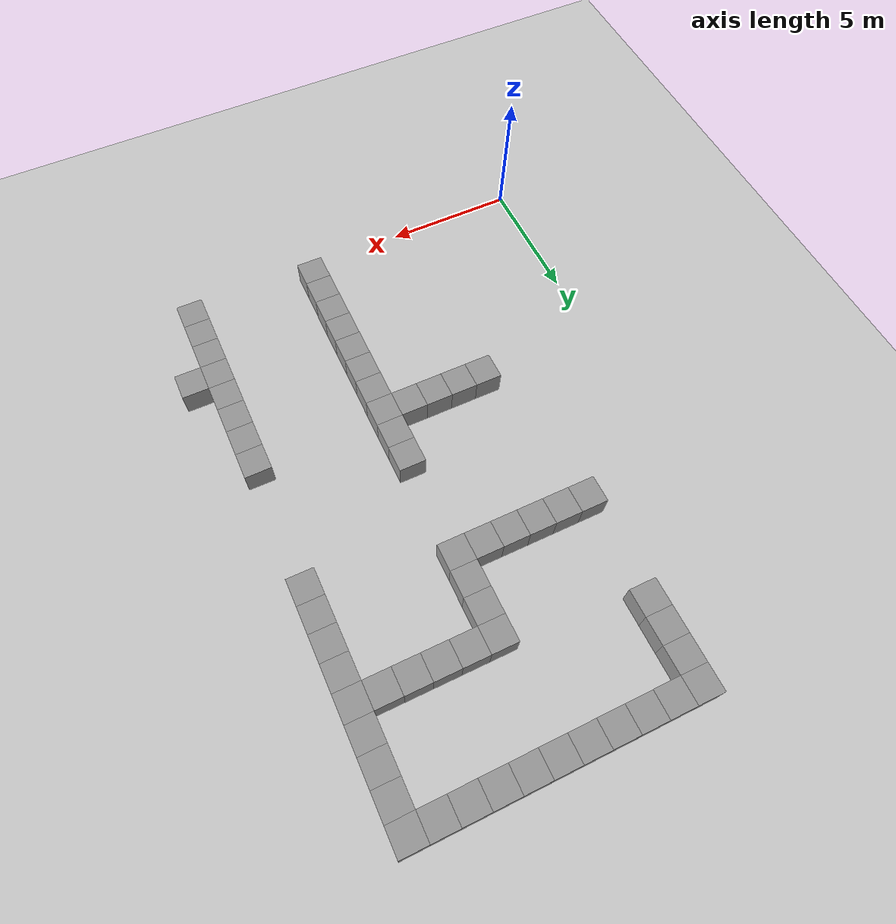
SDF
<sdf version="1.6">
 <world name="default">
  <model name="ground_plane">
   <static>1</static>
   <link name="link">
    <collision name="collision">
     <geometry><plane><normal>0 0 1</normal><size>100 100</size></plane></geometry>
     <surface><friction><ode><mu>100</mu><mu2>50</mu2></ode></friction></surface>
    </collision>
    <visual name="visual">
     <cast_shadows>0</cast_shadows>
     <geometry><plane><normal>0 0 1</normal><size>100 100</size></plane></geometry>
     <material>
      <script><uri>file://media/materials/scripts/gazebo.material</uri><name>Gazebo/Grey</name></script>
     </material>
    </visual>
    <velocity_decay><linear>0</linear><angular>0</angular></velocity_decay>
   </link>
  </model>
  <model name="unit_box_29">
   <pose>9 1 0.5 0 0 0</pose>
   <static>1</static>
   <link name="link">
    <inertial>
     <mass>1</mass>
     <inertia><ixx>1</ixx><ixy>0</ixy><ixz>0</ixz><iyy>1</iyy><iyz>0</iyz><izz>1</izz></inertia>
    </inertial>
    <collision name="collision"><geometry><box><size>1 1 1</size></box></geometry></collision>
    <visual name="visual">
     <geometry><box><size>1 1 1</size></box></geometry>
     <material>
      <script><uri>file://media/materials/scripts/gazebo.material</uri><name>Gazebo/Grey</name></script>
     </material>
    </visual>
    <velocity_decay><linear>0</linear><angular>0</angular></velocity_decay>
   </link>
   <static>0</static>
  </model>
  <model name="unit_box_30">
   <pose>9 2 0.5 0 0 0</pose>
   <static>1</static>
   <link name="link">
    <inertial>
     <mass>1</mass>
     <inertia><ixx>1</ixx><ixy>0</ixy><ixz>0</ixz><iyy>1</iyy><iyz>0</iyz><izz>1</izz></inertia>
    </inertial>
    <collision name="collision"><geometry><box><size>1 1 1</size></box></geometry></collision>
    <visual name="visual">
     <geometry><box><size>1 1 1</size></box></geometry>
     <material>
      <script><uri>file://media/materials/scripts/gazebo.material</uri><name>Gazebo/Grey</name></script>
     </material>
    </visual>
    <velocity_decay><linear>0</linear><angular>0</angular></velocity_decay>
   </link>
   <static>0</static>
  </model>
  <model name="unit_box_31">
   <pose>9 3 0.5 0 0 0</pose>
   <static>1</static>
   <link name="link">
    <inertial>
     <mass>1</mass>
     <inertia><ixx>1</ixx><ixy>0</ixy><ixz>0</ixz><iyy>1</iyy><iyz>0</iyz><izz>1</izz></inertia>
    </inertial>
    <collision name="collision"><geometry><box><size>1 1 1</size></box></geometry></collision>
    <visual name="visual">
     <geometry><box><size>1 1 1</size></box></geometry>
     <material>
      <script><uri>file://media/materials/scripts/gazebo.material</uri><name>Gazebo/Grey</name></script>
     </material>
    </visual>
    <velocity_decay><linear>0</linear><angular>0</angular></velocity_decay>
   </link>
   <static>0</static>
  </model>
  <model name="unit_box_32">
   <pose>9 4 0.5 0 0 0</pose>
   <static>1</static>
   <link name="link">
    <inertial>
     <mass>1</mass>
     <inertia><ixx>1</ixx><ixy>0</ixy><ixz>0</ixz><iyy>1</iyy><iyz>0</iyz><izz>1</izz></inertia>
    </inertial>
    <collision name="collision"><geometry><box><size>1 1 1</size></box></geometry></collision>
    <visual name="visual">
     <geometry><box><size>1 1 1</size></box></geometry>
     <material>
      <script><uri>file://media/materials/scripts/gazebo.material</uri><name>Gazebo/Grey</name></script>
     </material>
    </visual>
    <velocity_decay><linear>0</linear><angular>0</angular></velocity_decay>
   </link>
   <static>0</static>
  </model>
  <model name="unit_box_33">
   <pose>9 5 0.5 0 0 0</pose>
   <static>1</static>
   <link name="link">
    <inertial>
     <mass>1</mass>
     <inertia><ixx>1</ixx><ixy>0</ixy><ixz>0</ixz><iyy>1</iyy><iyz>0</iyz><izz>1</izz></inertia>
    </inertial>
    <collision name="collision"><geometry><box><size>1 1 1</size></box></geometry></collision>
    <visual name="visual">
     <geometry><box><size>1 1 1</size></box></geometry>
     <material>
      <script><uri>file://media/materials/scripts/gazebo.material</uri><name>Gazebo/Grey</name></script>
     </material>
    </visual>
    <velocity_decay><linear>0</linear><angular>0</angular></velocity_decay>
   </link>
   <static>0</static>
  </model>
  <model name="unit_box_34">
   <pose>9 6 0.5 0 0 0</pose>
   <static>1</static>
   <link name="link">
    <inertial>
     <mass>1</mass>
     <inertia><ixx>1</ixx><ixy>0</ixy><ixz>0</ixz><iyy>1</iyy><iyz>0</iyz><izz>1</izz></inertia>
    </inertial>
    <collision name="collision"><geometry><box><size>1 1 1</size></box></geometry></collision>
    <visual name="visual">
     <geometry><box><size>1 1 1</size></box></geometry>
     <material>
      <script><uri>file://media/materials/scripts/gazebo.material</uri><name>Gazebo/Grey</name></script>
     </material>
    </visual>
    <velocity_decay><linear>0</linear><angular>0</angular></velocity_decay>
   </link>
   <static>0</static>
  </model>
  <model name="unit_box_38">
   <pose>9 7 0.5 0 0 0</pose>
   <static>1</static>
   <link name="link">
    <inertial>
     <mass>1</mass>
     <inertia><ixx>1</ixx><ixy>0</ixy><ixz>0</ixz><iyy>1</iyy><iyz>0</iyz><izz>1</izz></inertia>
    </inertial>
    <collision name="collision"><geometry><box><size>1 1 1</size></box></geometry></collision>
    <visual name="visual">
     <geometry><box><size>1 1 1</size></box></geometry>
     <material>
      <script><uri>file://media/materials/scripts/gazebo.material</uri><name>Gazebo/Grey</name></script>
     </material>
    </visual>
    <velocity_decay><linear>0</linear><angular>0</angular></velocity_decay>
   </link>
   <static>0</static>
  </model>
  <model name="unit_box_39">
   <pose>9 8 0.5 0 0 0</pose>
   <static>1</static>
   <link name="link">
    <inertial>
     <mass>1</mass>
     <inertia><ixx>1</ixx><ixy>0</ixy><ixz>0</ixz><iyy>1</iyy><iyz>0</iyz><izz>1</izz></inertia>
    </inertial>
    <collision name="collision"><geometry><box><size>1 1 1</size></box></geometry></collision>
    <visual name="visual">
     <geometry><box><size>1 1 1</size></box></geometry>
     <material>
      <script><uri>file://media/materials/scripts/gazebo.material</uri><name>Gazebo/Grey</name></script>
     </material>
    </visual>
    <velocity_decay><linear>0</linear><angular>0</angular></velocity_decay>
   </link>
   <static>0</static>
  </model>
  <model name="unit_box_51">
   <pose>8 8 0.5 0 0 0</pose>
   <static>1</static>
   <link name="link">
    <inertial>
     <mass>1</mass>
     <inertia><ixx>1</ixx><ixy>0</ixy><ixz>0</ixz><iyy>1</iyy><iyz>0</iyz><izz>1</izz></inertia>
    </inertial>
    <collision name="collision"><geometry><box><size>1 1 1</size></box></geometry></collision>
    <visual name="visual">
     <geometry><box><size>1 1 1</size></box></geometry>
     <material>
      <script><uri>file://media/materials/scripts/gazebo.material</uri><name>Gazebo/Grey</name></script>
     </material>
    </visual>
    <velocity_decay><linear>0</linear><angular>0</angular></velocity_decay>
   </link>
   <static>0</static>
  </model>
  <model name="unit_box_52">
   <pose>7 8 0.5 0 0 0</pose>
   <static>1</static>
   <link name="link">
    <inertial>
     <mass>1</mass>
     <inertia><ixx>1</ixx><ixy>0</ixy><ixz>0</ixz><iyy>1</iyy><iyz>0</iyz><izz>1</izz></inertia>
    </inertial>
    <collision name="collision"><geometry><box><size>1 1 1</size></box></geometry></collision>
    <visual name="visual">
     <geometry><box><size>1 1 1</size></box></geometry>
     <material>
      <script><uri>file://media/materials/scripts/gazebo.material</uri><name>Gazebo/Grey</name></script>
     </material>
    </visual>
    <velocity_decay><linear>0</linear><angular>0</angular></velocity_decay>
   </link>
   <static>0</static>
  </model>
  <model name="unit_box_53">
   <pose>6 8 0.5 0 0 0</pose>
   <static>1</static>
   <link name="link">
    <inertial>
     <mass>1</mass>
     <inertia><ixx>1</ixx><ixy>0</ixy><ixz>0</ixz><iyy>1</iyy><iyz>0</iyz><izz>1</izz></inertia>
    </inertial>
    <collision name="collision"><geometry><box><size>1 1 1</size></box></geometry></collision>
    <visual name="visual">
     <geometry><box><size>1 1 1</size></box></geometry>
     <material>
      <script><uri>file://media/materials/scripts/gazebo.material</uri><name>Gazebo/Grey</name></script>
     </material>
    </visual>
    <velocity_decay><linear>0</linear><angular>0</angular></velocity_decay>
   </link>
   <static>0</static>
  </model>
  <model name="unit_box_54">
   <pose>5 8 0.5 0 0 0</pose>
   <static>1</static>
   <link name="link">
    <inertial>
     <mass>1</mass>
     <inertia><ixx>1</ixx><ixy>0</ixy><ixz>0</ixz><iyy>1</iyy><iyz>0</iyz><izz>1</izz></inertia>
    </inertial>
    <collision name="collision"><geometry><box><size>1 1 1</size></box></geometry></collision>
    <visual name="visual">
     <geometry><box><size>1 1 1</size></box></geometry>
     <material>
      <script><uri>file://media/materials/scripts/gazebo.material</uri><name>Gazebo/Grey</name></script>
     </material>
    </visual>
    <velocity_decay><linear>0</linear><angular>0</angular></velocity_decay>
   </link>
   <static>0</static>
  </model>
  <model name="unit_box_55">
   <pose>9 9 0.5 0 0 0</pose>
   <static>1</static>
   <link name="link">
    <inertial>
     <mass>1</mass>
     <inertia><ixx>1</ixx><ixy>0</ixy><ixz>0</ixz><iyy>1</iyy><iyz>0</iyz><izz>1</izz></inertia>
    </inertial>
    <collision name="collision"><geometry><box><size>1 1 1</size></box></geometry></collision>
    <visual name="visual">
     <geometry><box><size>1 1 1</size></box></geometry>
     <material>
      <script><uri>file://media/materials/scripts/gazebo.material</uri><name>Gazebo/Grey</name></script>
     </material>
    </visual>
    <velocity_decay><linear>0</linear><angular>0</angular></velocity_decay>
   </link>
   <static>0</static>
  </model>
  <model name="unit_box_56">
   <pose>9 10 0.5 0 0 0</pose>
   <static>1</static>
   <link name="link">
    <inertial>
     <mass>1</mass>
     <inertia><ixx>1</ixx><ixy>0</ixy><ixz>0</ixz><iyy>1</iyy><iyz>0</iyz><izz>1</izz></inertia>
    </inertial>
    <collision name="collision"><geometry><box><size>1 1 1</size></box></geometry></collision>
    <visual name="visual">
     <geometry><box><size>1 1 1</size></box></geometry>
     <material>
      <script><uri>file://media/materials/scripts/gazebo.material</uri><name>Gazebo/Grey</name></script>
     </material>
    </visual>
    <velocity_decay><linear>0</linear><angular>0</angular></velocity_decay>
   </link>
   <static>0</static>
  </model>
  <model name="unit_box_65">
   <pose>4 14 0.5 0 0 0</pose>
   <static>1</static>
   <link name="link">
    <inertial>
     <mass>1</mass>
     <inertia><ixx>1</ixx><ixy>0</ixy><ixz>0</ixz><iyy>1</iyy><iyz>0</iyz><izz>1</izz></inertia>
    </inertial>
    <collision name="collision"><geometry><box><size>1 1 1</size></box></geometry></collision>
    <visual name="visual">
     <geometry><box><size>1 1 1</size></box></geometry>
     <material>
      <script><uri>file://media/materials/scripts/gazebo.material</uri><name>Gazebo/Grey</name></script>
     </material>
    </visual>
    <velocity_decay><linear>0</linear><angular>0</angular></velocity_decay>
   </link>
   <static>0</static>
  </model>
  <model name="unit_box_66">
   <pose>5 14 0.5 0 0 0</pose>
   <static>1</static>
   <link name="link">
    <inertial>
     <mass>1</mass>
     <inertia><ixx>1</ixx><ixy>0</ixy><ixz>0</ixz><iyy>1</iyy><iyz>0</iyz><izz>1</izz></inertia>
    </inertial>
    <collision name="collision"><geometry><box><size>1 1 1</size></box></geometry></collision>
    <visual name="visual">
     <geometry><box><size>1 1 1</size></box></geometry>
     <material>
      <script><uri>file://media/materials/scripts/gazebo.material</uri><name>Gazebo/Grey</name></script>
     </material>
    </visual>
    <velocity_decay><linear>0</linear><angular>0</angular></velocity_decay>
   </link>
   <static>0</static>
  </model>
  <model name="unit_box_86">
   <pose>6 14 0.5 0 0 0</pose>
   <static>1</static>
   <link name="link">
    <inertial>
     <mass>1</mass>
     <inertia><ixx>1</ixx><ixy>0</ixy><ixz>0</ixz><iyy>1</iyy><iyz>0</iyz><izz>1</izz></inertia>
    </inertial>
    <collision name="collision"><geometry><box><size>1 1 1</size></box></geometry></collision>
    <visual name="visual">
     <geometry><box><size>1 1 1</size></box></geometry>
     <material>
      <script><uri>file://media/materials/scripts/gazebo.material</uri><name>Gazebo/Grey</name></script>
     </material>
    </visual>
    <velocity_decay><linear>0</linear><angular>0</angular></velocity_decay>
   </link>
   <static>0</static>
  </model>
  <model name="unit_box_87">
   <pose>7 14 0.5 0 0 0</pose>
   <static>1</static>
   <link name="link">
    <inertial>
     <mass>1</mass>
     <inertia><ixx>1</ixx><ixy>0</ixy><ixz>0</ixz><iyy>1</iyy><iyz>0</iyz><izz>1</izz></inertia>
    </inertial>
    <collision name="collision"><geometry><box><size>1 1 1</size></box></geometry></collision>
    <visual name="visual">
     <geometry><box><size>1 1 1</size></box></geometry>
     <material>
      <script><uri>file://media/materials/scripts/gazebo.material</uri><name>Gazebo/Grey</name></script>
     </material>
    </visual>
    <velocity_decay><linear>0</linear><angular>0</angular></velocity_decay>
   </link>
   <static>0</static>
  </model>
  <model name="unit_box_88">
   <pose>8 14 0.5 0 0 0</pose>
   <static>1</static>
   <link name="link">
    <inertial>
     <mass>1</mass>
     <inertia><ixx>1</ixx><ixy>0</ixy><ixz>0</ixz><iyy>1</iyy><iyz>0</iyz><izz>1</izz></inertia>
    </inertial>
    <collision name="collision"><geometry><box><size>1 1 1</size></box></geometry></collision>
    <visual name="visual">
     <geometry><box><size>1 1 1</size></box></geometry>
     <material>
      <script><uri>file://media/materials/scripts/gazebo.material</uri><name>Gazebo/Grey</name></script>
     </material>
    </visual>
    <velocity_decay><linear>0</linear><angular>0</angular></velocity_decay>
   </link>
   <static>0</static>
  </model>
  <model name="unit_box_89">
   <pose>9 14 0.5 0 0 0</pose>
   <static>1</static>
   <link name="link">
    <inertial>
     <mass>1</mass>
     <inertia><ixx>1</ixx><ixy>0</ixy><ixz>0</ixz><iyy>1</iyy><iyz>0</iyz><izz>1</izz></inertia>
    </inertial>
    <collision name="collision"><geometry><box><size>1 1 1</size></box></geometry></collision>
    <visual name="visual">
     <geometry><box><size>1 1 1</size></box></geometry>
     <material>
      <script><uri>file://media/materials/scripts/gazebo.material</uri><name>Gazebo/Grey</name></script>
     </material>
    </visual>
    <velocity_decay><linear>0</linear><angular>0</angular></velocity_decay>
   </link>
   <static>0</static>
  </model>
  <model name="unit_box_93">
   <pose>9 15 0.5 0 0 0</pose>
   <static>1</static>
   <link name="link">
    <inertial>
     <mass>1</mass>
     <inertia><ixx>1</ixx><ixy>0</ixy><ixz>0</ixz><iyy>1</iyy><iyz>0</iyz><izz>1</izz></inertia>
    </inertial>
    <collision name="collision"><geometry><box><size>1 1 1</size></box></geometry></collision>
    <visual name="visual">
     <geometry><box><size>1 1 1</size></box></geometry>
     <material>
      <script><uri>file://media/materials/scripts/gazebo.material</uri><name>Gazebo/Grey</name></script>
     </material>
    </visual>
    <velocity_decay><linear>0</linear><angular>0</angular></velocity_decay>
   </link>
   <static>0</static>
  </model>
  <model name="unit_box_94">
   <pose>9 16 0.5 0 0 0</pose>
   <static>1</static>
   <link name="link">
    <inertial>
     <mass>1</mass>
     <inertia><ixx>1</ixx><ixy>0</ixy><ixz>0</ixz><iyy>1</iyy><iyz>0</iyz><izz>1</izz></inertia>
    </inertial>
    <collision name="collision"><geometry><box><size>1 1 1</size></box></geometry></collision>
    <visual name="visual">
     <geometry><box><size>1 1 1</size></box></geometry>
     <material>
      <script><uri>file://media/materials/scripts/gazebo.material</uri><name>Gazebo/Grey</name></script>
     </material>
    </visual>
    <velocity_decay><linear>0</linear><angular>0</angular></velocity_decay>
   </link>
   <static>0</static>
  </model>
  <model name="unit_box_95">
   <pose>9 17 0.5 0 0 0</pose>
   <static>1</static>
   <link name="link">
    <inertial>
     <mass>1</mass>
     <inertia><ixx>1</ixx><ixy>0</ixy><ixz>0</ixz><iyy>1</iyy><iyz>0</iyz><izz>1</izz></inertia>
    </inertial>
    <collision name="collision"><geometry><box><size>1 1 1</size></box></geometry></collision>
    <visual name="visual">
     <geometry><box><size>1 1 1</size></box></geometry>
     <material>
      <script><uri>file://media/materials/scripts/gazebo.material</uri><name>Gazebo/Grey</name></script>
     </material>
    </visual>
    <velocity_decay><linear>0</linear><angular>0</angular></velocity_decay>
   </link>
   <static>0</static>
  </model>
  <model name="unit_box_107">
   <pose>4 21 0.5 0 0 0</pose>
   <static>1</static>
   <link name="link">
    <inertial>
     <mass>1</mass>
     <inertia><ixx>1</ixx><ixy>0</ixy><ixz>0</ixz><iyy>1</iyy><iyz>0</iyz><izz>1</izz></inertia>
    </inertial>
    <collision name="collision"><geometry><box><size>1 1 1</size></box></geometry></collision>
    <visual name="visual">
     <geometry><box><size>1 1 1</size></box></geometry>
     <material>
      <script><uri>file://media/materials/scripts/gazebo.material</uri><name>Gazebo/Grey</name></script>
     </material>
    </visual>
    <velocity_decay><linear>0</linear><angular>0</angular></velocity_decay>
   </link>
   <static>0</static>
  </model>
  <model name="unit_box_108">
   <pose>5 21 0.5 0 0 0</pose>
   <static>1</static>
   <link name="link">
    <inertial>
     <mass>1</mass>
     <inertia><ixx>1</ixx><ixy>0</ixy><ixz>0</ixz><iyy>1</iyy><iyz>0</iyz><izz>1</izz></inertia>
    </inertial>
    <collision name="collision"><geometry><box><size>1 1 1</size></box></geometry></collision>
    <visual name="visual">
     <geometry><box><size>1 1 1</size></box></geometry>
     <material>
      <script><uri>file://media/materials/scripts/gazebo.material</uri><name>Gazebo/Grey</name></script>
     </material>
    </visual>
    <velocity_decay><linear>0</linear><angular>0</angular></velocity_decay>
   </link>
   <static>0</static>
  </model>
  <model name="unit_box_109">
   <pose>6 21 0.5 0 0 0</pose>
   <static>1</static>
   <link name="link">
    <inertial>
     <mass>1</mass>
     <inertia><ixx>1</ixx><ixy>0</ixy><ixz>0</ixz><iyy>1</iyy><iyz>0</iyz><izz>1</izz></inertia>
    </inertial>
    <collision name="collision"><geometry><box><size>1 1 1</size></box></geometry></collision>
    <visual name="visual">
     <geometry><box><size>1 1 1</size></box></geometry>
     <material>
      <script><uri>file://media/materials/scripts/gazebo.material</uri><name>Gazebo/Grey</name></script>
     </material>
    </visual>
    <velocity_decay><linear>0</linear><angular>0</angular></velocity_decay>
   </link>
   <static>0</static>
  </model>
  <model name="unit_box_110">
   <pose>7 21 0.5 0 0 0</pose>
   <static>1</static>
   <link name="link">
    <inertial>
     <mass>1</mass>
     <inertia><ixx>1</ixx><ixy>0</ixy><ixz>0</ixz><iyy>1</iyy><iyz>0</iyz><izz>1</izz></inertia>
    </inertial>
    <collision name="collision"><geometry><box><size>1 1 1</size></box></geometry></collision>
    <visual name="visual">
     <geometry><box><size>1 1 1</size></box></geometry>
     <material>
      <script><uri>file://media/materials/scripts/gazebo.material</uri><name>Gazebo/Grey</name></script>
     </material>
    </visual>
    <velocity_decay><linear>0</linear><angular>0</angular></velocity_decay>
   </link>
   <static>0</static>
  </model>
  <model name="unit_box_111">
   <pose>8 21 0.5 0 0 0</pose>
   <static>1</static>
   <link name="link">
    <inertial>
     <mass>1</mass>
     <inertia><ixx>1</ixx><ixy>0</ixy><ixz>0</ixz><iyy>1</iyy><iyz>0</iyz><izz>1</izz></inertia>
    </inertial>
    <collision name="collision"><geometry><box><size>1 1 1</size></box></geometry></collision>
    <visual name="visual">
     <geometry><box><size>1 1 1</size></box></geometry>
     <material>
      <script><uri>file://media/materials/scripts/gazebo.material</uri><name>Gazebo/Grey</name></script>
     </material>
    </visual>
    <velocity_decay><linear>0</linear><angular>0</angular></velocity_decay>
   </link>
   <static>0</static>
  </model>
  <model name="unit_box_112">
   <pose>9 21 0.5 0 0 0</pose>
   <static>1</static>
   <link name="link">
    <inertial>
     <mass>1</mass>
     <inertia><ixx>1</ixx><ixy>0</ixy><ixz>0</ixz><iyy>1</iyy><iyz>0</iyz><izz>1</izz></inertia>
    </inertial>
    <collision name="collision"><geometry><box><size>1 1 1</size></box></geometry></collision>
    <visual name="visual">
     <geometry><box><size>1 1 1</size></box></geometry>
     <material>
      <script><uri>file://media/materials/scripts/gazebo.material</uri><name>Gazebo/Grey</name></script>
     </material>
    </visual>
    <velocity_decay><linear>0</linear><angular>0</angular></velocity_decay>
   </link>
   <static>0</static>
  </model>
  <model name="unit_box_113">
   <pose>10 21 0.5 0 0 0</pose>
   <static>1</static>
   <link name="link">
    <inertial>
     <mass>1</mass>
     <inertia><ixx>1</ixx><ixy>0</ixy><ixz>0</ixz><iyy>1</iyy><iyz>0</iyz><izz>1</izz></inertia>
    </inertial>
    <collision name="collision"><geometry><box><size>1 1 1</size></box></geometry></collision>
    <visual name="visual">
     <geometry><box><size>1 1 1</size></box></geometry>
     <material>
      <script><uri>file://media/materials/scripts/gazebo.material</uri><name>Gazebo/Grey</name></script>
     </material>
    </visual>
    <velocity_decay><linear>0</linear><angular>0</angular></velocity_decay>
   </link>
   <static>0</static>
  </model>
  <model name="unit_box_114">
   <pose>11 21 0.5 0 0 0</pose>
   <static>1</static>
   <link name="link">
    <inertial>
     <mass>1</mass>
     <inertia><ixx>1</ixx><ixy>0</ixy><ixz>0</ixz><iyy>1</iyy><iyz>0</iyz><izz>1</izz></inertia>
    </inertial>
    <collision name="collision"><geometry><box><size>1 1 1</size></box></geometry></collision>
    <visual name="visual">
     <geometry><box><size>1 1 1</size></box></geometry>
     <material>
      <script><uri>file://media/materials/scripts/gazebo.material</uri><name>Gazebo/Grey</name></script>
     </material>
    </visual>
    <velocity_decay><linear>0</linear><angular>0</angular></velocity_decay>
   </link>
   <static>0</static>
  </model>
  <model name="unit_box_115">
   <pose>12 21 0.5 0 0 0</pose>
   <static>1</static>
   <link name="link">
    <inertial>
     <mass>1</mass>
     <inertia><ixx>1</ixx><ixy>0</ixy><ixz>0</ixz><iyy>1</iyy><iyz>0</iyz><izz>1</izz></inertia>
    </inertial>
    <collision name="collision"><geometry><box><size>1 1 1</size></box></geometry></collision>
    <visual name="visual">
     <geometry><box><size>1 1 1</size></box></geometry>
     <material>
      <script><uri>file://media/materials/scripts/gazebo.material</uri><name>Gazebo/Grey</name></script>
     </material>
    </visual>
    <velocity_decay><linear>0</linear><angular>0</angular></velocity_decay>
   </link>
   <static>0</static>
  </model>
  <model name="unit_box_116">
   <pose>13 21 0.5 0 0 0</pose>
   <static>1</static>
   <link name="link">
    <inertial>
     <mass>1</mass>
     <inertia><ixx>1</ixx><ixy>0</ixy><ixz>0</ixz><iyy>1</iyy><iyz>0</iyz><izz>1</izz></inertia>
    </inertial>
    <collision name="collision"><geometry><box><size>1 1 1</size></box></geometry></collision>
    <visual name="visual">
     <geometry><box><size>1 1 1</size></box></geometry>
     <material>
      <script><uri>file://media/materials/scripts/gazebo.material</uri><name>Gazebo/Grey</name></script>
     </material>
    </visual>
    <velocity_decay><linear>0</linear><angular>0</angular></velocity_decay>
   </link>
   <static>0</static>
  </model>
  <model name="unit_box_117">
   <pose>10 17 0.5 0 0 0</pose>
   <static>1</static>
   <link name="link">
    <inertial>
     <mass>1</mass>
     <inertia><ixx>1</ixx><ixy>0</ixy><ixz>0</ixz><iyy>1</iyy><iyz>0</iyz><izz>1</izz></inertia>
    </inertial>
    <collision name="collision"><geometry><box><size>1 1 1</size></box></geometry></collision>
    <visual name="visual">
     <geometry><box><size>1 1 1</size></box></geometry>
     <material>
      <script><uri>file://media/materials/scripts/gazebo.material</uri><name>Gazebo/Grey</name></script>
     </material>
    </visual>
    <velocity_decay><linear>0</linear><angular>0</angular></velocity_decay>
   </link>
   <static>0</static>
  </model>
  <model name="unit_box_118">
   <pose>11 17 0.5 0 0 0</pose>
   <static>1</static>
   <link name="link">
    <inertial>
     <mass>1</mass>
     <inertia><ixx>1</ixx><ixy>0</ixy><ixz>0</ixz><iyy>1</iyy><iyz>0</iyz><izz>1</izz></inertia>
    </inertial>
    <collision name="collision"><geometry><box><size>1 1 1</size></box></geometry></collision>
    <visual name="visual">
     <geometry><box><size>1 1 1</size></box></geometry>
     <material>
      <script><uri>file://media/materials/scripts/gazebo.material</uri><name>Gazebo/Grey</name></script>
     </material>
    </visual>
    <velocity_decay><linear>0</linear><angular>0</angular></velocity_decay>
   </link>
   <static>0</static>
  </model>
  <model name="unit_box_119">
   <pose>12 17 0.5 0 0 0</pose>
   <static>1</static>
   <link name="link">
    <inertial>
     <mass>1</mass>
     <inertia><ixx>1</ixx><ixy>0</ixy><ixz>0</ixz><iyy>1</iyy><iyz>0</iyz><izz>1</izz></inertia>
    </inertial>
    <collision name="collision"><geometry><box><size>1 1 1</size></box></geometry></collision>
    <visual name="visual">
     <geometry><box><size>1 1 1</size></box></geometry>
     <material>
      <script><uri>file://media/materials/scripts/gazebo.material</uri><name>Gazebo/Grey</name></script>
     </material>
    </visual>
    <velocity_decay><linear>0</linear><angular>0</angular></velocity_decay>
   </link>
   <static>0</static>
  </model>
  <model name="unit_box_120">
   <pose>13 17 0.5 0 0 0</pose>
   <static>1</static>
   <link name="link">
    <inertial>
     <mass>1</mass>
     <inertia><ixx>1</ixx><ixy>0</ixy><ixz>0</ixz><iyy>1</iyy><iyz>0</iyz><izz>1</izz></inertia>
    </inertial>
    <collision name="collision"><geometry><box><size>1 1 1</size></box></geometry></collision>
    <visual name="visual">
     <geometry><box><size>1 1 1</size></box></geometry>
     <material>
      <script><uri>file://media/materials/scripts/gazebo.material</uri><name>Gazebo/Grey</name></script>
     </material>
    </visual>
    <velocity_decay><linear>0</linear><angular>0</angular></velocity_decay>
   </link>
   <static>0</static>
  </model>
  <model name="unit_box_121">
   <pose>14 21 0.5 0 0 0</pose>
   <static>1</static>
   <link name="link">
    <inertial>
     <mass>1</mass>
     <inertia><ixx>1</ixx><ixy>0</ixy><ixz>0</ixz><iyy>1</iyy><iyz>0</iyz><izz>1</izz></inertia>
    </inertial>
    <collision name="collision"><geometry><box><size>1 1 1</size></box></geometry></collision>
    <visual name="visual">
     <geometry><box><size>1 1 1</size></box></geometry>
     <material>
      <script><uri>file://media/materials/scripts/gazebo.material</uri><name>Gazebo/Grey</name></script>
     </material>
    </visual>
    <velocity_decay><linear>0</linear><angular>0</angular></velocity_decay>
   </link>
   <static>0</static>
  </model>
  <model name="unit_box_122">
   <pose>14 20 0.5 0 0 0</pose>
   <static>1</static>
   <link name="link">
    <inertial>
     <mass>1</mass>
     <inertia><ixx>1</ixx><ixy>0</ixy><ixz>0</ixz><iyy>1</iyy><iyz>0</iyz><izz>1</izz></inertia>
    </inertial>
    <collision name="collision"><geometry><box><size>1 1 1</size></box></geometry></collision>
    <visual name="visual">
     <geometry><box><size>1 1 1</size></box></geometry>
     <material>
      <script><uri>file://media/materials/scripts/gazebo.material</uri><name>Gazebo/Grey</name></script>
     </material>
    </visual>
    <velocity_decay><linear>0</linear><angular>0</angular></velocity_decay>
   </link>
   <static>0</static>
  </model>
  <model name="unit_box_123">
   <pose>14 19 0.5 0 0 0</pose>
   <static>1</static>
   <link name="link">
    <inertial>
     <mass>1</mass>
     <inertia><ixx>1</ixx><ixy>0</ixy><ixz>0</ixz><iyy>1</iyy><iyz>0</iyz><izz>1</izz></inertia>
    </inertial>
    <collision name="collision"><geometry><box><size>1 1 1</size></box></geometry></collision>
    <visual name="visual">
     <geometry><box><size>1 1 1</size></box></geometry>
     <material>
      <script><uri>file://media/materials/scripts/gazebo.material</uri><name>Gazebo/Grey</name></script>
     </material>
    </visual>
    <velocity_decay><linear>0</linear><angular>0</angular></velocity_decay>
   </link>
   <static>0</static>
  </model>
  <model name="unit_box_124">
   <pose>14 18 0.5 0 0 0</pose>
   <static>1</static>
   <link name="link">
    <inertial>
     <mass>1</mass>
     <inertia><ixx>1</ixx><ixy>0</ixy><ixz>0</ixz><iyy>1</iyy><iyz>0</iyz><izz>1</izz></inertia>
    </inertial>
    <collision name="collision"><geometry><box><size>1 1 1</size></box></geometry></collision>
    <visual name="visual">
     <geometry><box><size>1 1 1</size></box></geometry>
     <material>
      <script><uri>file://media/materials/scripts/gazebo.material</uri><name>Gazebo/Grey</name></script>
     </material>
    </visual>
    <velocity_decay><linear>0</linear><angular>0</angular></velocity_decay>
   </link>
   <static>0</static>
  </model>
  <model name="unit_box_125">
   <pose>14 17 0.5 0 0 0</pose>
   <static>1</static>
   <link name="link">
    <inertial>
     <mass>1</mass>
     <inertia><ixx>1</ixx><ixy>0</ixy><ixz>0</ixz><iyy>1</iyy><iyz>0</iyz><izz>1</izz></inertia>
    </inertial>
    <collision name="collision"><geometry><box><size>1 1 1</size></box></geometry></collision>
    <visual name="visual">
     <geometry><box><size>1 1 1</size></box></geometry>
     <material>
      <script><uri>file://media/materials/scripts/gazebo.material</uri><name>Gazebo/Grey</name></script>
     </material>
    </visual>
    <velocity_decay><linear>0</linear><angular>0</angular></velocity_decay>
   </link>
   <static>0</static>
  </model>
  <model name="unit_box_126">
   <pose>4 20 0.5 0 0 0</pose>
   <static>1</static>
   <link name="link">
    <inertial>
     <mass>1</mass>
     <inertia><ixx>1</ixx><ixy>0</ixy><ixz>0</ixz><iyy>1</iyy><iyz>0</iyz><izz>1</izz></inertia>
    </inertial>
    <collision name="collision"><geometry><box><size>1 1 1</size></box></geometry></collision>
    <visual name="visual">
     <geometry><box><size>1 1 1</size></box></geometry>
     <material>
      <script><uri>file://media/materials/scripts/gazebo.material</uri><name>Gazebo/Grey</name></script>
     </material>
    </visual>
    <velocity_decay><linear>0</linear><angular>0</angular></velocity_decay>
   </link>
   <static>0</static>
  </model>
  <model name="unit_box_127">
   <pose>4 19 0.5 0 0 0</pose>
   <static>1</static>
   <link name="link">
    <inertial>
     <mass>1</mass>
     <inertia><ixx>1</ixx><ixy>0</ixy><ixz>0</ixz><iyy>1</iyy><iyz>0</iyz><izz>1</izz></inertia>
    </inertial>
    <collision name="collision"><geometry><box><size>1 1 1</size></box></geometry></collision>
    <visual name="visual">
     <geometry><box><size>1 1 1</size></box></geometry>
     <material>
      <script><uri>file://media/materials/scripts/gazebo.material</uri><name>Gazebo/Grey</name></script>
     </material>
    </visual>
    <velocity_decay><linear>0</linear><angular>0</angular></velocity_decay>
   </link>
   <static>0</static>
  </model>
  <model name="unit_box_128">
   <pose>4 18 0.5 0 0 0</pose>
   <static>1</static>
   <link name="link">
    <inertial>
     <mass>1</mass>
     <inertia><ixx>1</ixx><ixy>0</ixy><ixz>0</ixz><iyy>1</iyy><iyz>0</iyz><izz>1</izz></inertia>
    </inertial>
    <collision name="collision"><geometry><box><size>1 1 1</size></box></geometry></collision>
    <visual name="visual">
     <geometry><box><size>1 1 1</size></box></geometry>
     <material>
      <script><uri>file://media/materials/scripts/gazebo.material</uri><name>Gazebo/Grey</name></script>
     </material>
    </visual>
    <velocity_decay><linear>0</linear><angular>0</angular></velocity_decay>
   </link>
   <static>0</static>
  </model>
  <model name="unit_box_130">
   <pose>14 16 0.5 0 0 0</pose>
   <static>1</static>
   <link name="link">
    <inertial>
     <mass>1</mass>
     <inertia><ixx>1</ixx><ixy>0</ixy><ixz>0</ixz><iyy>1</iyy><iyz>0</iyz><izz>1</izz></inertia>
    </inertial>
    <collision name="collision"><geometry><box><size>1 1 1</size></box></geometry></collision>
    <visual name="visual">
     <geometry><box><size>1 1 1</size></box></geometry>
     <material>
      <script><uri>file://media/materials/scripts/gazebo.material</uri><name>Gazebo/Grey</name></script>
     </material>
    </visual>
    <velocity_decay><linear>0</linear><angular>0</angular></velocity_decay>
   </link>
   <static>0</static>
  </model>
  <model name="unit_box_131">
   <pose>14 15 0.5 0 0 0</pose>
   <static>1</static>
   <link name="link">
    <inertial>
     <mass>1</mass>
     <inertia><ixx>1</ixx><ixy>0</ixy><ixz>0</ixz><iyy>1</iyy><iyz>0</iyz><izz>1</izz></inertia>
    </inertial>
    <collision name="collision"><geometry><box><size>1 1 1</size></box></geometry></collision>
    <visual name="visual">
     <geometry><box><size>1 1 1</size></box></geometry>
     <material>
      <script><uri>file://media/materials/scripts/gazebo.material</uri><name>Gazebo/Grey</name></script>
     </material>
    </visual>
    <velocity_decay><linear>0</linear><angular>0</angular></velocity_decay>
   </link>
   <static>0</static>
  </model>
  <model name="unit_box_132">
   <pose>14 14 0.5 0 0 0</pose>
   <static>1</static>
   <link name="link">
    <inertial>
     <mass>1</mass>
     <inertia><ixx>1</ixx><ixy>0</ixy><ixz>0</ixz><iyy>1</iyy><iyz>0</iyz><izz>1</izz></inertia>
    </inertial>
    <collision name="collision"><geometry><box><size>1 1 1</size></box></geometry></collision>
    <visual name="visual">
     <geometry><box><size>1 1 1</size></box></geometry>
     <material>
      <script><uri>file://media/materials/scripts/gazebo.material</uri><name>Gazebo/Grey</name></script>
     </material>
    </visual>
    <velocity_decay><linear>0</linear><angular>0</angular></velocity_decay>
   </link>
   <static>0</static>
  </model>
  <model name="unit_box_133">
   <pose>14 13 0.5 0 0 0</pose>
   <static>1</static>
   <link name="link">
    <inertial>
     <mass>1</mass>
     <inertia><ixx>1</ixx><ixy>0</ixy><ixz>0</ixz><iyy>1</iyy><iyz>0</iyz><izz>1</izz></inertia>
    </inertial>
    <collision name="collision"><geometry><box><size>1 1 1</size></box></geometry></collision>
    <visual name="visual">
     <geometry><box><size>1 1 1</size></box></geometry>
     <material>
      <script><uri>file://media/materials/scripts/gazebo.material</uri><name>Gazebo/Grey</name></script>
     </material>
    </visual>
    <velocity_decay><linear>0</linear><angular>0</angular></velocity_decay>
   </link>
   <static>0</static>
  </model>
  <model name="unit_box_169">
   <pose>14 8 0.5 0 0 0</pose>
   <static>1</static>
   <link name="link">
    <inertial>
     <mass>1</mass>
     <inertia><ixx>1</ixx><ixy>0</ixy><ixz>0</ixz><iyy>1</iyy><iyz>0</iyz><izz>1</izz></inertia>
    </inertial>
    <collision name="collision"><geometry><box><size>1 1 1</size></box></geometry></collision>
    <visual name="visual">
     <geometry><box><size>1 1 1</size></box></geometry>
     <material>
      <script><uri>file://media/materials/scripts/gazebo.material</uri><name>Gazebo/Grey</name></script>
     </material>
    </visual>
    <velocity_decay><linear>0</linear><angular>0</angular></velocity_decay>
   </link>
   <static>0</static>
  </model>
  <model name="unit_box_170">
   <pose>14 7 0.5 0 0 0</pose>
   <static>1</static>
   <link name="link">
    <inertial>
     <mass>1</mass>
     <inertia><ixx>1</ixx><ixy>0</ixy><ixz>0</ixz><iyy>1</iyy><iyz>0</iyz><izz>1</izz></inertia>
    </inertial>
    <collision name="collision"><geometry><box><size>1 1 1</size></box></geometry></collision>
    <visual name="visual">
     <geometry><box><size>1 1 1</size></box></geometry>
     <material>
      <script><uri>file://media/materials/scripts/gazebo.material</uri><name>Gazebo/Grey</name></script>
     </material>
    </visual>
    <velocity_decay><linear>0</linear><angular>0</angular></velocity_decay>
   </link>
   <static>0</static>
  </model>
  <model name="unit_box_171">
   <pose>14 6 0.5 0 0 0</pose>
   <static>1</static>
   <link name="link">
    <inertial>
     <mass>1</mass>
     <inertia><ixx>1</ixx><ixy>0</ixy><ixz>0</ixz><iyy>1</iyy><iyz>0</iyz><izz>1</izz></inertia>
    </inertial>
    <collision name="collision"><geometry><box><size>1 1 1</size></box></geometry></collision>
    <visual name="visual">
     <geometry><box><size>1 1 1</size></box></geometry>
     <material>
      <script><uri>file://media/materials/scripts/gazebo.material</uri><name>Gazebo/Grey</name></script>
     </material>
    </visual>
    <velocity_decay><linear>0</linear><angular>0</angular></velocity_decay>
   </link>
   <static>0</static>
  </model>
  <model name="unit_box_172">
   <pose>14 5 0.5 0 0 0</pose>
   <static>1</static>
   <link name="link">
    <inertial>
     <mass>1</mass>
     <inertia><ixx>1</ixx><ixy>0</ixy><ixz>0</ixz><iyy>1</iyy><iyz>0</iyz><izz>1</izz></inertia>
    </inertial>
    <collision name="collision"><geometry><box><size>1 1 1</size></box></geometry></collision>
    <visual name="visual">
     <geometry><box><size>1 1 1</size></box></geometry>
     <material>
      <script><uri>file://media/materials/scripts/gazebo.material</uri><name>Gazebo/Grey</name></script>
     </material>
    </visual>
    <velocity_decay><linear>0</linear><angular>0</angular></velocity_decay>
   </link>
   <static>0</static>
  </model>
  <model name="unit_box_173">
   <pose>14 4 0.5 0 0 0</pose>
   <static>1</static>
   <link name="link">
    <inertial>
     <mass>1</mass>
     <inertia><ixx>1</ixx><ixy>0</ixy><ixz>0</ixz><iyy>1</iyy><iyz>0</iyz><izz>1</izz></inertia>
    </inertial>
    <collision name="collision"><geometry><box><size>1 1 1</size></box></geometry></collision>
    <visual name="visual">
     <geometry><box><size>1 1 1</size></box></geometry>
     <material>
      <script><uri>file://media/materials/scripts/gazebo.material</uri><name>Gazebo/Grey</name></script>
     </material>
    </visual>
    <velocity_decay><linear>0</linear><angular>0</angular></velocity_decay>
   </link>
   <static>0</static>
  </model>
  <model name="unit_box_174">
   <pose>14 3 0.5 0 0 0</pose>
   <static>1</static>
   <link name="link">
    <inertial>
     <mass>1</mass>
     <inertia><ixx>1</ixx><ixy>0</ixy><ixz>0</ixz><iyy>1</iyy><iyz>0</iyz><izz>1</izz></inertia>
    </inertial>
    <collision name="collision"><geometry><box><size>1 1 1</size></box></geometry></collision>
    <visual name="visual">
     <geometry><box><size>1 1 1</size></box></geometry>
     <material>
      <script><uri>file://media/materials/scripts/gazebo.material</uri><name>Gazebo/Grey</name></script>
     </material>
    </visual>
    <velocity_decay><linear>0</linear><angular>0</angular></velocity_decay>
   </link>
   <static>0</static>
  </model>
  <model name="unit_box_175">
   <pose>14 2 0.5 0 0 0</pose>
   <static>1</static>
   <link name="link">
    <inertial>
     <mass>1</mass>
     <inertia><ixx>1</ixx><ixy>0</ixy><ixz>0</ixz><iyy>1</iyy><iyz>0</iyz><izz>1</izz></inertia>
    </inertial>
    <collision name="collision"><geometry><box><size>1 1 1</size></box></geometry></collision>
    <visual name="visual">
     <geometry><box><size>1 1 1</size></box></geometry>
     <material>
      <script><uri>file://media/materials/scripts/gazebo.material</uri><name>Gazebo/Grey</name></script>
     </material>
    </visual>
    <velocity_decay><linear>0</linear><angular>0</angular></velocity_decay>
   </link>
   <static>0</static>
  </model>
  <model name="unit_box_176">
   <pose>14 1 0.5 0 0 0</pose>
   <static>1</static>
   <link name="link">
    <inertial>
     <mass>1</mass>
     <inertia><ixx>1</ixx><ixy>0</ixy><ixz>0</ixz><iyy>1</iyy><iyz>0</iyz><izz>1</izz></inertia>
    </inertial>
    <collision name="collision"><geometry><box><size>1 1 1</size></box></geometry></collision>
    <visual name="visual">
     <geometry><box><size>1 1 1</size></box></geometry>
     <material>
      <script><uri>file://media/materials/scripts/gazebo.material</uri><name>Gazebo/Grey</name></script>
     </material>
    </visual>
    <velocity_decay><linear>0</linear><angular>0</angular></velocity_decay>
   </link>
   <static>0</static>
  </model>
  <model name="unit_box_177">
   <pose>15 4 0.5 0 0 0</pose>
   <static>1</static>
   <link name="link">
    <inertial>
     <mass>1</mass>
     <inertia><ixx>1</ixx><ixy>0</ixy><ixz>0</ixz><iyy>1</iyy><iyz>0</iyz><izz>1</izz></inertia>
    </inertial>
    <collision name="collision"><geometry><box><size>1 1 1</size></box></geometry></collision>
    <visual name="visual">
     <geometry><box><size>1 1 1</size></box></geometry>
     <material>
      <script><uri>file://media/materials/scripts/gazebo.material</uri><name>Gazebo/Grey</name></script>
     </material>
    </visual>
    <velocity_decay><linear>0</linear><angular>0</angular></velocity_decay>
   </link>
   <static>0</static>
  </model>
 </world>
</sdf>
